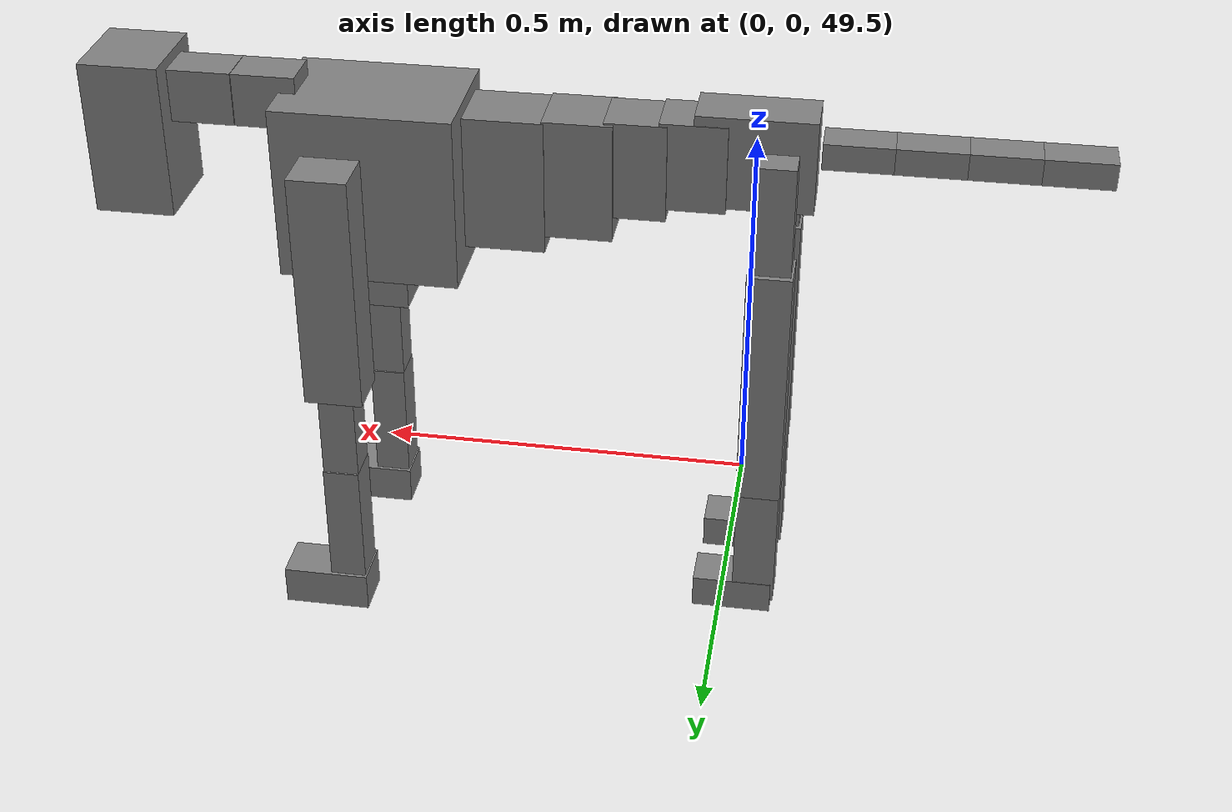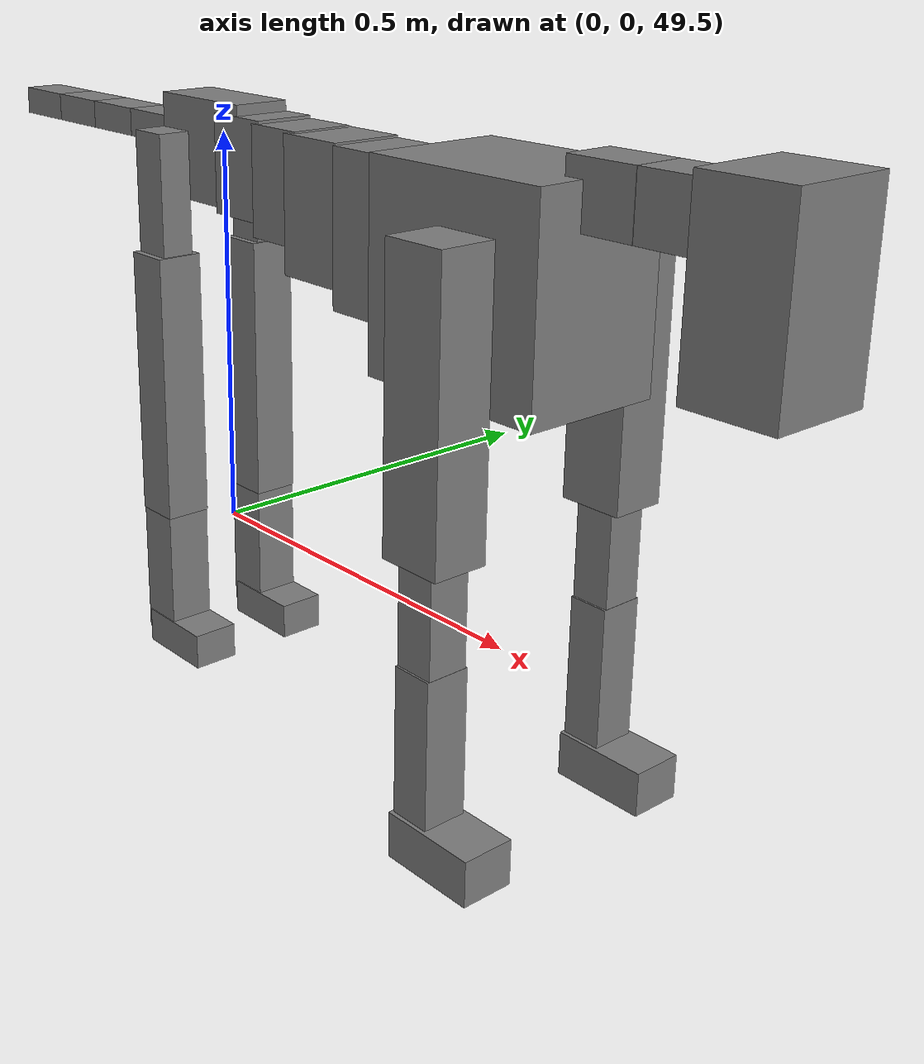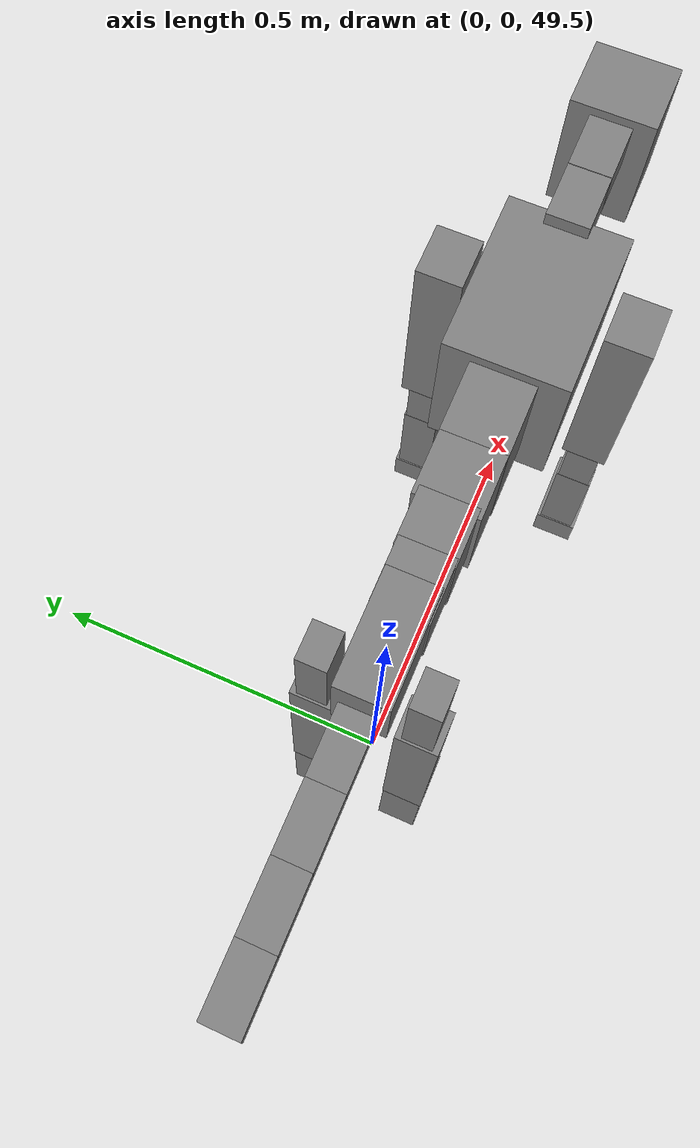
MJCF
<mujoco model="dog">

    <default>
        <joint armature="0.02" stiffness="1" damping="0.2" limited="true"/>
        <geom condim="3" friction="1 0.05 0.05" margin="0.01"/>
        <motor ctrllimited="true" ctrlrange="-1.0 1.0" forcelimited="true" gear="50"/>
    </default>

    <compiler inertiafromgeom="true" angle="radian"/>

    <option timestep="0.016" iterations="50" tolerance="1e-10" solver="Newton" jacobian="dense" cone="pyramidal"/>

    <size nconmax="20000" njmax="60000" nstack="5000000"/>
    <visual>
        <map force="0.1" zfar="30"/>
        <rgba haze="0.15 0.25 0.35 1"/>
        <quality shadowsize="2048"/>
        <global offwidth="800" offheight="800"/>
    </visual>

    <asset>
        <texture type="skybox" builtin="gradient" rgb1="0.3 0.5 0.7" rgb2="0 0 0" width="512" height="512"/>
        <texture name="texplane" type="2d" builtin="checker" rgb1=".2 .3 .4" rgb2=".1 0.15 0.2" width="512" height="512"
                 mark="cross" markrgb=".8 .8 .8"/>
        <texture name="texgeom" type="cube" builtin="flat" mark="cross" width="127" height="1278" rgb1="0.8 0.6 0.4"
                 rgb2="0.8 0.6 0.4" markrgb="1 1 1" random="0.01"/>

        <material name="matplane" reflectance="0.3" texture="texplane" texrepeat="1 1" texuniform="true"/>
        <material name="matgeom" texture="texgeom" texuniform="true" rgba="0.8 0.6 .4 1"/>
    </asset>

    <worldbody>
        <geom name="floor" pos="0 0 0" size="0 0 .25" type="plane" material="matplane" condim="3"/>

        <light directional="false" diffuse=".2 .2 .2" specular="0 0 0" pos="0 0 5" dir="0 0 -1" castshadow="false"/>
        <light mode="targetbodycom" target="torso" directional="false" diffuse=".8 .8 .8" specular="0.3 0.3 0.3"
               pos="0 0 4.0" dir="0 0 -1"/>

        <body name="root" pos="0 0 50">
            <freejoint name="root_1"/>
            <geom type="box" pos="0 0 -0.02" size="0.0774  0.0358  0.063" density="2030"/>

            <body name="spine1" pos="0.054 0 0">
                <joint name="spine1_y" axis="0 1 0" range="0 0.7" limited="true"/>
                <geom type="box" pos="0.02375 0 -0.03" size="0.04375  0.0375  0.05985" density="2030"/>

                <body name="spine2" pos="0.0612 0 0">
                    <joint name="spine2_y" axis="0 1 0" range="-0.15 0.15" limited="true"/>
                    <geom type="box" pos="0.03555  0  -0.04" size="0.04055  0.039  0.06615" density="2030"/>

                    <body name="spine3" pos="0.0730 0 0">
                        <joint name="spine3_y" axis="0 1 0" range="-0.15 0.15" limited="true"/>
                        <geom type="box" pos="0.03555  0  -0.057" size="0.04555  0.0445  0.081" density="2030"/>

                        <body name="spine4" pos="0.0780 0 0">
                            <joint name="spine4_y" axis="0 1 0" range="-0.15 0.15" limited="true"/>
                            <geom type="box" pos="0.05265  0  -0.07" size="0.05265  0.045  0.09135" density="2030"/>

                            <body name="torso" pos="0.1082 0 0">
                                <joint name="torso_y" axis="0 1 0" range="-0.15 0.15" limited="true"/>
                                <geom type="box" pos="0.11925  0  -0.085" size="0.11925  0.085  0.11745"
                                      density="2030"/>

                                <body name="neck1" pos="0.2160  0   0.0180">
                                    <joint name="neck1_y" axis="0 1 0" range="-1.2  -1" limited="true"/>
                                    <geom type="box" pos="0.0423  0  0" size="0.0423  0.03  0.036" density="2325"/>

                                    <body name="neck2" pos="0.0853  0  0">
                                        <joint name="neck2_y" axis="0 1 0" range="0.1  0" limited="true"/>
                                        <geom type="box" pos="0.0423  0  0" size="0.0423  0.03  0.036" density="2325"/>

                                        <body name="head" pos="0.0853  0  0">
                                            <joint name="head_y" axis="0 1 0" range="-0.3  -0.2" limited="true"/>
                                            <geom type="box" pos="0.0531  0  -0.055" size="0.0531  0.06  0.1044"
                                                  density="4030"/>

                                        </body>
                                    </body>
                                </body>

                                <body name="front_shoulder" pos="0.156  0   -0.0480">
                                    <joint name="front_shoulder_y" axis="0 1 0" range="-1 1.5" limited="true"/>
                                    <geom type="box" pos="0 0.13 -0.1372" size="0.0390  0.0333  0.1639" density="1158"/>
                                    <geom type="box" pos="0 -0.13 -0.1372" size="0.0390  0.0333  0.1639"
                                          density="1158"/>

                                    <body name="front_elbow" pos="0  0  -0.2744">
                                        <joint name="front_elbow_y" axis="0 1 0" range="-2 0" limited="true"/>
                                        <geom type="box" pos="0 0.13 -0.0779" size="0.0241  0.0246  0.0779"
                                              density="1081"/>
                                        <geom type="box" pos="0 -0.13 -0.0779" size="0.0241  0.0246  0.0779"
                                              density="1081"/>

                                        <body name="front_wrist" pos="0  0  -0.1558">
                                            <joint name="front_wrist_y" axis="0 1 0" range="-0.2 0" limited="true"/>
                                            <geom type="box" pos="0 0.13 -0.0866" size="0.0244  0.0271  0.0997"
                                                  density="1664"/>
                                            <geom type="box" pos="0 -0.13 -0.0866" size="0.0244  0.0271  0.0997"
                                                  density="1664"/>

                                            <body name="front_finger_end" pos="0  0  -0.1732">
                                                <joint name="front_finger_y" axis="0 1 0" range="-0.4 1"
                                                       limited="true"/>
                                                <geom type="box" pos="0.0320  0.13  -0.0118"
                                                      size="0.0586  0.0320  0.0268" density="1515"/>
                                                <geom type="box" pos="0.0320  -0.13  -0.0118"
                                                      size="0.0586  0.0320  0.0268" density="1515"/>

                                            </body>

                                        </body>
                                    </body>
                                </body>

                            </body>
                        </body>
                    </body>
                </body>
            </body>

            <body name="back_hip" pos="-0.03 0 -0.018">
                <joint name="back_hip_y" axis="0 1 0" range="-1.5 0.3" limited="true"/>
                <geom type="box" pos="0 0.07 -0.0711" size="0.0262  0.0205  0.0939" density="1154"/>
                <geom type="box" pos="0 -0.07 -0.0711" size="0.0262  0.0205  0.0939" density="1154"/>

                <body name="back_knee" pos="0  0  -0.1422">
                    <joint name="back_knee_y" axis="0 1 0" range="0 2.8" limited="true"/>
                    <geom type="box" pos="0 0.07 -0.1539" size="0.0294  0.0290  0.1694" density="1227"/>
                    <geom type="box" pos="0 -0.07 -0.1539" size="0.0294  0.0290  0.1694" density="1227"/>

                    <body name="back_ankle" pos="0  0  -0.3078">
                        <joint name="back_ankle_y" axis="0 1 0" range="-2.2 0" limited="true"/>
                        <geom type="box" pos="0 0.07 -0.0878" size="0.0283  0.0283  0.0990" density="1284"/>
                        <geom type="box" pos="0 -0.07 -0.0878" size="0.0283  0.0283  0.0990" density="1284"/>

                        <body name="back_toe_end" pos="0  0  -0.1755">
                            <joint name="back_toe_y" axis="0 1 0" range="-0.4 1" limited="true"/>
                            <geom type="box" pos="0.0292  0.07  -0.0076" size="0.0536  0.0292  0.0226" density="1515"/>
                            <geom type="box" pos="0.0292  -0.07  -0.0076" size="0.0536  0.0292  0.0226" density="1515"/>

                        </body>
                    </body>
                </body>
            </body>

            <body name="tail1" pos="-0.074 0 -0.006">
                <joint name="tail1_y" axis="0 1 0" range="-0.2 0.2" limited="true"/>
                <geom type="box" pos="-0.0536  0  0" size="0.045  0.025  0.0175" density="1587"/>

                <body name="tail2" pos="-0.09 0 0">
                    <joint name="tail2_y" axis="0 1 0" range="-0.2 0.2" limited="true"/>
                    <geom type="box" pos="-0.0536  0  0" size="0.045  0.025  0.0175" density="1587"/>

                    <body name="tail3" pos="-0.09 0 0">
                        <joint name="tail3_y" axis="0 1 0" range="-0.2 0.2" limited="true"/>
                        <geom type="box" pos="-0.0536  0  0" size="0.045  0.025  0.0175" density="1587"/>

                        <body name="tail4" pos="-0.09 0 0">
                            <joint name="tail4_y" axis="0 1 0" range="-0.2 0.2" limited="true"/>
                            <geom type="box" pos="-0.0536  0  0" size="0.045  0.025  0.0175" density="1587"/>

                        </body>
                    </body>
                </body>
            </body>
        </body>
    </worldbody>

    <actuator>
        <motor joint="spine1_y" forcerange="-150 150     "/>
        <motor joint="spine2_y" forcerange="-150 150     "/>
        <motor joint="spine3_y" forcerange="-150 150     "/>
        <motor joint="spine4_y" forcerange="-150 150     "/>
        <motor joint="torso_y" forcerange="-150 150     "/>
        <motor joint="neck1_y" forcerange="-100 100       "/>
        <motor joint="neck2_y" forcerange="-100 100       "/>
        <motor joint="head_y" forcerange="-150 150       "/>
        <motor joint="front_shoulder_y" forcerange="-138.75 183.35"/>
        <motor joint="front_elbow_y" forcerange="-113.29 165.85"/>
        <motor joint="front_wrist_y" forcerange="-90.15 126.53"/>
        <motor joint="front_finger_y" forcerange="-74.91 55.65"/>
        <motor joint="back_hip_y" forcerange="-225.58 248.19"/>
        <motor joint="back_knee_y" forcerange="-374.41 247.40"/>
        <motor joint="back_angle_y" forcerange="-166.09 186.39"/>
        <motor joint="back_toe_y" forcerange="-30.52 123.23"/>
        <motor joint="tail1_y" forcerange="-50 50     "/>
        <motor joint="tail2_y" forcerange="-50 50     "/>
        <motor joint="tail3_y" forcerange="-50 50     "/>
        <motor joint="tail4_y" forcerange="-50 50     "/>
    </actuator>
</mujoco>
